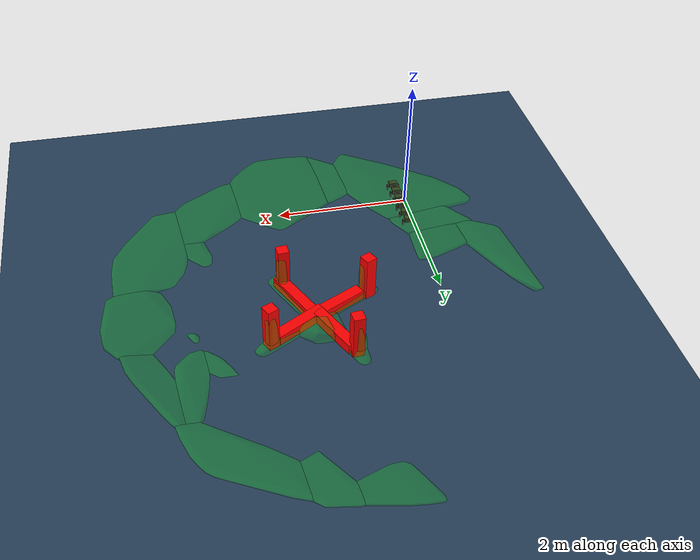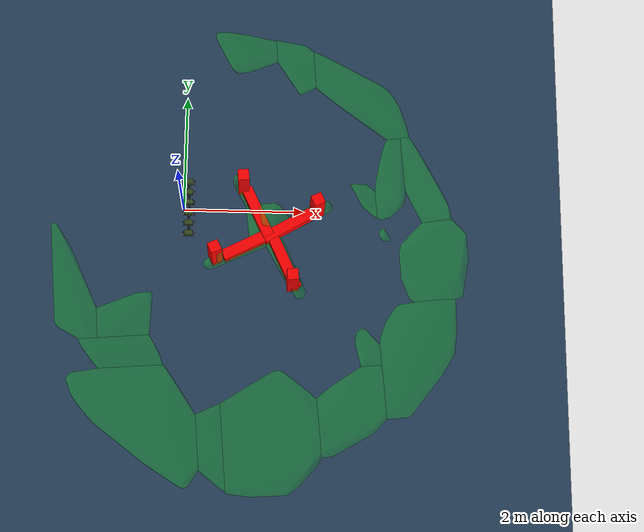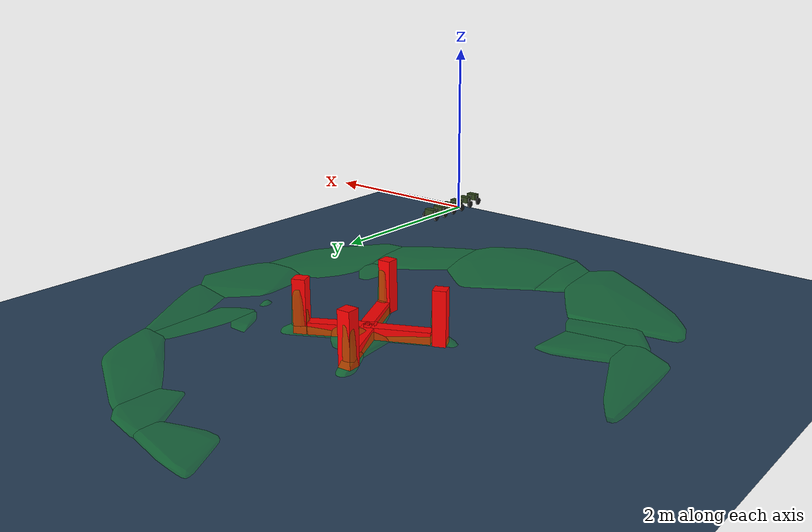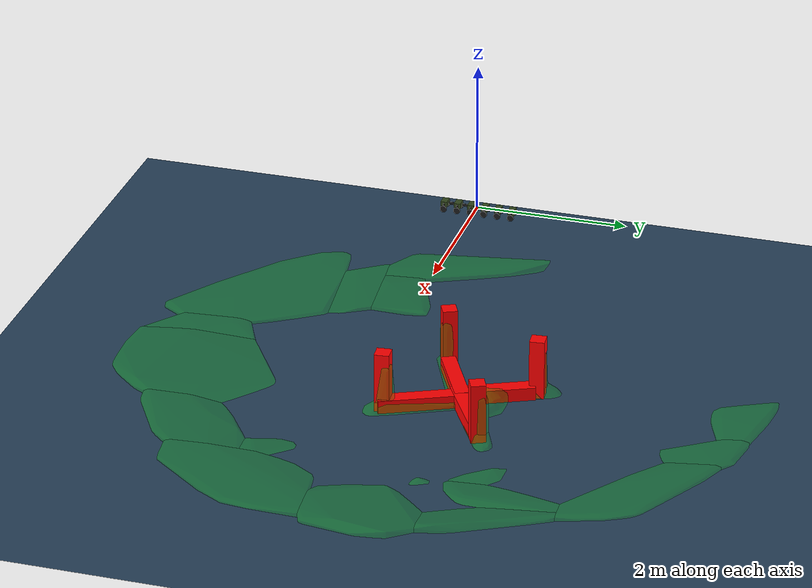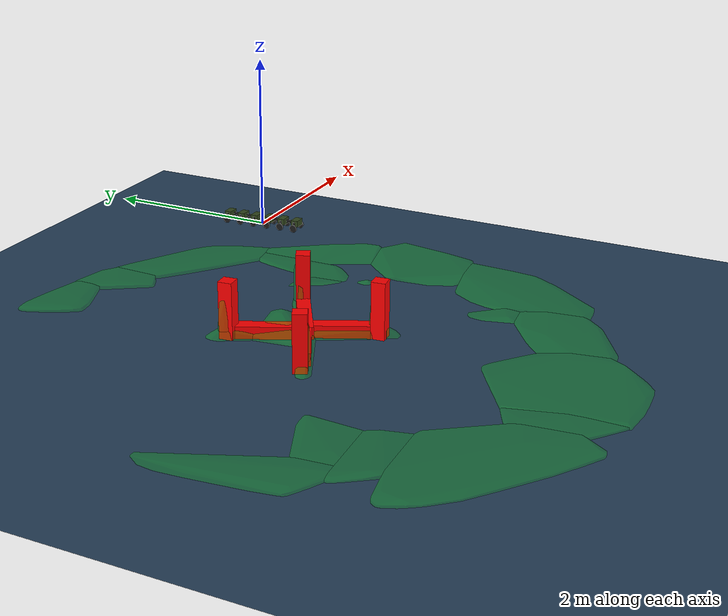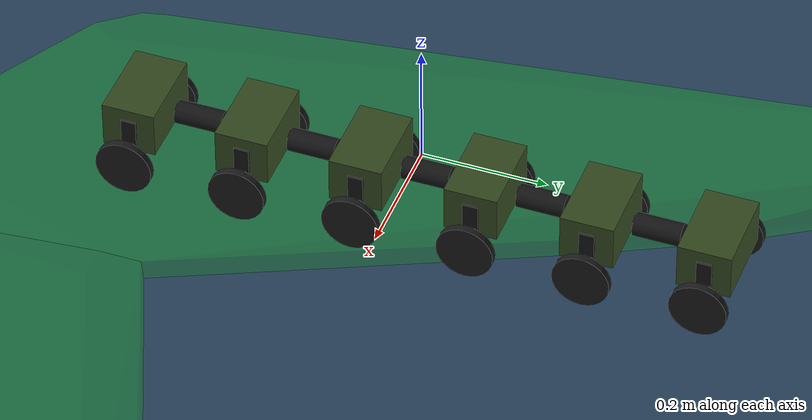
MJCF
<?xml version='1.0' encoding='UTF-8'?>
<mujoco model="o_leg_3sections">
  <option timestep="0.002" gravity="0 0 -9.81"/>
  <visual>
    <global offwidth="1920" offheight="1080"/>
  </visual>
  <asset>
    <texture name="grid" type="2d" builtin="checker" rgb1=".1 .2 .3" rgb2=".2 .3 .4" width="300" height="300"/>
    <material name="grid" texture="grid" texrepeat="30 30" reflectance="0"/>
    <material name="robot_green" rgba="0.1 0.35 0.1 1"/>
    <mesh name="garden_visual" file="garden_collision.stl" scale="2 2 2"/>
    <mesh name="garden_col_0" file="garden_collision_parts/garden_col_0.stl" scale="2 2 2"/>
    <mesh name="garden_col_1" file="garden_collision_parts/garden_col_1.stl" scale="2 2 2"/>
    <mesh name="garden_col_2" file="garden_collision_parts/garden_col_2.stl" scale="2 2 2"/>
    <mesh name="garden_col_3" file="garden_collision_parts/garden_col_3.stl" scale="2 2 2"/>
    <mesh name="garden_col_4" file="garden_collision_parts/garden_col_4.stl" scale="2 2 2"/>
    <mesh name="garden_col_5" file="garden_collision_parts/garden_col_5.stl" scale="2 2 2"/>
    <mesh name="garden_col_6" file="garden_collision_parts/garden_col_6.stl" scale="2 2 2"/>
    <mesh name="garden_col_7" file="garden_collision_parts/garden_col_7.stl" scale="2 2 2"/>
    <mesh name="garden_col_8" file="garden_collision_parts/garden_col_8.stl" scale="2 2 2"/>
    <mesh name="garden_col_9" file="garden_collision_parts/garden_col_9.stl" scale="2 2 2"/>
    <mesh name="garden_col_10" file="garden_collision_parts/garden_col_10.stl" scale="2 2 2"/>
    <mesh name="garden_col_11" file="garden_collision_parts/garden_col_11.stl" scale="2 2 2"/>
    <mesh name="garden_col_12" file="garden_collision_parts/garden_col_12.stl" scale="2 2 2"/>
    <mesh name="garden_col_13" file="garden_collision_parts/garden_col_13.stl" scale="2 2 2"/>
    <mesh name="garden_col_14" file="garden_collision_parts/garden_col_14.stl" scale="2 2 2"/>
    <mesh name="garden_col_15" file="garden_collision_parts/garden_col_15.stl" scale="2 2 2"/>
    <mesh name="garden_col_16" file="garden_collision_parts/garden_col_16.stl" scale="2 2 2"/>
    <mesh name="garden_col_17" file="garden_collision_parts/garden_col_17.stl" scale="2 2 2"/>
    <mesh name="garden_col_18" file="garden_collision_parts/garden_col_18.stl" scale="2 2 2"/>
    <mesh name="garden_col_19" file="garden_collision_parts/garden_col_19.stl" scale="2 2 2"/>
    <mesh name="garden_col_20" file="garden_collision_parts/garden_col_20.stl" scale="2 2 2"/>
    <mesh name="garden_col_21" file="garden_collision_parts/garden_col_21.stl" scale="2 2 2"/>
    <mesh name="garden_col_22" file="garden_collision_parts/garden_col_22.stl" scale="2 2 2"/>
    <mesh name="garden_col_23" file="garden_collision_parts/garden_col_23.stl" scale="2 2 2"/>
    <mesh name="garden_col_24" file="garden_collision_parts/garden_col_24.stl" scale="2 2 2"/>
    <mesh name="garden_col_25" file="garden_collision_parts/garden_col_25.stl" scale="2 2 2"/>
  </asset>
  <worldbody>
    <geom name="ground" type="plane" pos="0 0 -2.12" size="10 10 0.4" material="grid" friction="0.5 0 0"/>
    <light name="strong_light" pos="0 0 5" dir="0 0 -4" directional="true" diffuse="1 1 4" specular="0.3 0.3 0.6" active="true" castshadow="false" cutoff="100" exponent="10"/>
    <camera name="side_cam1" pos="4.787 -0.909 -1.537" xyaxes="-0.011 1.000 -0.000 -0.068 -0.001 0.998"/>
    <camera name="side_cam2" pos="0.783 -0.953 3.350" xyaxes="-0.008 1.000 0.000 -0.989 -0.008 0.148"/>

    <!-- ===== SECTION 3 (root) ===== -->
    <body name="body_middle6" pos="-0.00714 0.36184 0.008">
      <joint name="root_free" type="free"/>
      <geom size="0.0666575 0.041973 0.0374445" pos="0.074417 0.12845 0.025525" type="box" rgba="0.2 0.28 0.12 1"/>
      <inertial pos="0.074417 0.12845 0.025525" mass="0.08684000" diaginertia="0.00009158204 0.00016920278 0.00017961293"/>

      <body name="motor_L6" pos="0 0 0">
        <inertial pos="0.13525 0.12938 0.022634" mass="0.04388000" diaginertia="0.00000721932 0.00001081797 0.00001232792"/>
        <geom size="0.009 0.012 0.0215" pos="0.13525 0.12938 0.022634" type="box" rgba="0.08 0.08 0.08 1"/>
        <body name="o_leg_L6" pos="0 0 0">
          <joint name="knee_joint_L6" type="hinge" pos="-0.009764 0.1294 0.01076" axis="1 0 0" damping="0.5"/>
          <inertial pos="0.16407 0.12939 -0.027134" mass="0.10587964" diaginertia="0.00004860956 0.00005124607 0.00009533636"/>
          <geom name="o_leg_L6" size="0.045 0.006" pos="0.16407 0.12939 -0.027134" quat="0.707105 0 0.707108 0" type="cylinder" rgba="0.10 0.10 0.10 1"/>
        </body>
      </body>

      <body name="motor_R6" pos="0 0 0">
        <inertial pos="0.012712 0.12941 0.022604" mass="0.04388000" diaginertia="0.00000721932 0.00001081797 0.00001232792"/>
        <geom size="0.009 0.012 0.0215" pos="0.012712 0.12941 0.022604" type="box" rgba="0.08 0.08 0.08 1"/>
        <body name="o_leg_R6" pos="0 0 0">
          <joint name="knee_joint_R6" type="hinge" pos="-0.009764 0.1294 0.01076" axis="1 0 0" damping="0.5"/>
          <inertial pos="-0.016106 0.1294 -0.027164" mass="0.10587964" diaginertia="0.00004860956 0.00005124607 0.00009533636"/>
          <geom name="o_leg_R6" size="0.045 0.006" pos="-0.016106 0.1294 -0.027164" quat="0.707105 0 0.707108 0" type="cylinder" rgba="0.10 0.10 0.10 1"/>
        </body>
      </body>

      <body name="vertjoint6" pos="0 0 0">
        <joint name="vertjoint_hinge6" type="hinge" pos="0.094905 0.086975 0.02858" axis="1 0 0" range="-90 90" damping="0.5"/>
        <inertial pos="0.077976 0.038797 0.027871" mass="0.15853000" diaginertia="0.00004786090 0.00019459966 0.00019531491"/>
        <geom size="0.018 0.0375" pos="0.077976 0.038797 0.027871" quat="0.499998 -0.500002 0.5 0.5" type="cylinder" rgba="0.08 0.08 0.08 1"/>

        <body name="horzjoint6_body" pos="0 0 0">
          <joint name="horzjoint6" type="hinge" pos="0.07753 -0.009025 0.045952" axis="0 0 1" range="-90 90" damping="0.5"/>
          <inertial pos="0.07753 -0.009025 0.045952" mass="0.0004" diaginertia="0.000001 0.000001 0.000001"/>

          <!-- ===== SECTION 2 ===== -->
          <body name="body_middle5" pos="0.00357 -0.18092 0.003">
            <geom size="0.0666575 0.041973 0.0374445" pos="0.074417 0.12845 0.025525" type="box" rgba="0.2 0.28 0.12 1"/>
            <inertial pos="0.074417 0.12845 0.025525" mass="0.08684000" diaginertia="0.00009158204 0.00016920278 0.00017961293"/>

            <body name="motor_L5" pos="0 0 0">
              <inertial pos="0.13525 0.12938 0.022634" mass="0.04388000" diaginertia="0.00000721932 0.00001081797 0.00001232792"/>
              <geom size="0.009 0.012 0.0215" pos="0.13525 0.12938 0.022634" type="box" rgba="0.08 0.08 0.08 1"/>
              <body name="o_leg_L5" pos="0 0 0">
                <joint name="knee_joint_L5" type="hinge" pos="-0.009764 0.1294 0.01076" axis="1 0 0" damping="0.5"/>
                <inertial pos="0.16407 0.12939 -0.027134" mass="0.10587964" diaginertia="0.00004860956 0.00005124607 0.00009533636"/>
                <geom name="o_leg_L5" size="0.045 0.006" pos="0.16407 0.12939 -0.027134" quat="0.707105 0 0.707108 0" type="cylinder" rgba="0.10 0.10 0.10 1"/>
              </body>
            </body>

            <body name="motor_R5" pos="0 0 0">
              <inertial pos="0.012712 0.12941 0.022604" mass="0.04388000" diaginertia="0.00000721932 0.00001081797 0.00001232792"/>
              <geom size="0.009 0.012 0.0215" pos="0.012712 0.12941 0.022604" type="box" rgba="0.08 0.08 0.08 1"/>
              <body name="o_leg_R5" pos="0 0 0">
                <joint name="knee_joint_R5" type="hinge" pos="-0.009764 0.1294 0.01076" axis="1 0 0" damping="0.5"/>
                <inertial pos="-0.016106 0.1294 -0.027164" mass="0.10587964" diaginertia="0.00004860956 0.00005124607 0.00009533636"/>
                <geom name="o_leg_R5" size="0.045 0.006" pos="-0.016106 0.1294 -0.027164" quat="0.707105 0 0.707108 0" type="cylinder" rgba="0.10 0.10 0.10 1"/>
              </body>
            </body>

            <body name="vertjoint5" pos="0 0 0">
              <joint name="vertjoint_hinge5" type="hinge" pos="0.094905 0.086975 0.02858" axis="1 0 0" range="-90 90" damping="0.5"/>
              <inertial pos="0.077976 0.038797 0.027871" mass="0.15853000" diaginertia="0.00004786090 0.00019459966 0.00019531491"/>
              <geom size="0.018 0.0375" pos="0.077976 0.038797 0.027871" quat="0.499998 -0.500002 0.5 0.5" type="cylinder" rgba="0.08 0.08 0.08 1"/>

              <body name="horzjoint5_body" pos="0 0 0">
                <joint name="horzjoint5" type="hinge" pos="0.07753 -0.009025 0.045952" axis="0 0 1" range="-90 90" damping="0.5"/>
                <inertial pos="0.07753 -0.009025 0.045952" mass="0.0004" diaginertia="0.000001 0.000001 0.000001"/>

                <!-- ===== SECTION 1 ===== -->
                <body name="body_middle4" pos="0.00357 -0.18092 0.003">
                  <geom size="0.0666575 0.041973 0.0374445" pos="0.074417 0.12845 0.025525" type="box" rgba="0.2 0.28 0.12 1"/>
                  <inertial pos="0.074417 0.12845 0.025525" mass="0.08684000" diaginertia="0.00009158204 0.00016920278 0.00017961293"/>

                  <body name="motor_L4" pos="0 0 0">
                    <inertial pos="0.13525 0.12938 0.022634" mass="0.04388000" diaginertia="0.00000721932 0.00001081797 0.00001232792"/>
                    <geom size="0.009 0.012 0.0215" pos="0.13525 0.12938 0.022634" type="box" rgba="0.08 0.08 0.08 1"/>
                    <body name="o_leg_L4" pos="0 0 0">
                      <joint name="knee_joint_L4" type="hinge" pos="-0.009764 0.1294 0.01076" axis="1 0 0" damping="0.5"/>
                      <inertial pos="0.16407 0.12939 -0.027134" mass="0.10587964" diaginertia="0.00004860956 0.00005124607 0.00009533636"/>
                      <geom name="o_leg_L4" size="0.045 0.006" pos="0.16407 0.12939 -0.027134" quat="0.707105 0 0.707108 0" type="cylinder" rgba="0.10 0.10 0.10 1"/>
                    </body>
                  </body>

                  <body name="motor_R4" pos="0 0 0">
                    <inertial pos="0.012712 0.12941 0.022604" mass="0.04388000" diaginertia="0.00000721932 0.00001081797 0.00001232792"/>
                    <geom size="0.009 0.012 0.0215" pos="0.012712 0.12941 0.022604" type="box" rgba="0.08 0.08 0.08 1"/>
                    <body name="o_leg_R4" pos="0 0 0">
                      <joint name="knee_joint_R4" type="hinge" pos="-0.009764 0.1294 0.01076" axis="1 0 0" damping="0.5"/>
                      <inertial pos="-0.016106 0.1294 -0.027164" mass="0.10587964" diaginertia="0.00004860956 0.00005124607 0.00009533636"/>
                      <geom name="o_leg_R4" size="0.045 0.006" pos="-0.016106 0.1294 -0.027164" quat="0.707105 0 0.707108 0" type="cylinder" rgba="0.10 0.10 0.10 1"/>
                    </body>
                  </body>

                  <body name="vertjoint4" pos="0 0 0">
                    <joint name="vertjoint_hinge4" type="hinge" pos="0.094905 0.086975 0.02858" axis="1 0 0" range="-90 90" damping="0.5"/>
                    <inertial pos="0.077976 0.038797 0.027871" mass="0.15853000" diaginertia="0.00004786090 0.00019459966 0.00019531491"/>
                    <geom size="0.018 0.0375" pos="0.077976 0.038797 0.027871" quat="0.499998 -0.500002 0.5 0.5" type="cylinder" rgba="0.08 0.08 0.08 1"/>

                    <body name="horzjoint4_body" pos="0 0 0">
                      <joint name="horzjoint4" type="hinge" pos="0.07753 -0.009025 0.045952" axis="0 0 1" range="-90 90" damping="0.5"/>
                      <inertial pos="0.07753 -0.009025 0.045952" mass="0.0004" diaginertia="0.000001 0.000001 0.000001"/>

                      <!-- ===== SECTION 4 ===== -->
                      <body name="body_middle3" pos="0.00357 -0.18092 0.003">
                        <camera name="robot_center_scene_camera" pos="0.074 0.064 0.120" xyaxes="-1 0 0 0 0 1" fovy="90"/>
                        <geom size="0.0666575 0.041973 0.0374445" pos="0.074417 0.12845 0.025525" type="box" rgba="0.2 0.28 0.12 1"/>
                        <inertial pos="0.074417 0.12845 0.025525" mass="0.08684000" diaginertia="0.00009158204 0.00016920278 0.00017961293"/>

                        <body name="motor_L3" pos="0 0 0">
                          <inertial pos="0.13525 0.12938 0.022634" mass="0.04388000" diaginertia="0.00000721932 0.00001081797 0.00001232792"/>
                          <geom size="0.009 0.012 0.0215" pos="0.13525 0.12938 0.022634" type="box" rgba="0.08 0.08 0.08 1"/>
                          <body name="o_leg_L3" pos="0 0 0">
                            <joint name="knee_joint_L3" type="hinge" pos="-0.009764 0.1294 0.01076" axis="1 0 0" damping="0.5"/>
                            <inertial pos="0.16407 0.12939 -0.027134" mass="0.10587964" diaginertia="0.00004860956 0.00005124607 0.00009533636"/>
                            <geom name="o_leg_L3" size="0.045 0.006" pos="0.16407 0.12939 -0.027134" quat="0.707105 0 0.707108 0" type="cylinder" rgba="0.10 0.10 0.10 1"/>
                          </body>
                        </body>

                        <body name="motor_R3" pos="0 0 0">
                          <inertial pos="0.012712 0.12941 0.022604" mass="0.04388000" diaginertia="0.00000721932 0.00001081797 0.00001232792"/>
                          <geom size="0.009 0.012 0.0215" pos="0.012712 0.12941 0.022604" type="box" rgba="0.08 0.08 0.08 1"/>
                          <body name="o_leg_R3" pos="0 0 0">
                            <joint name="knee_joint_R3" type="hinge" pos="-0.009764 0.1294 0.01076" axis="1 0 0" damping="0.5"/>
                            <inertial pos="-0.016106 0.1294 -0.027164" mass="0.10587964" diaginertia="0.00004860956 0.00005124607 0.00009533636"/>
                            <geom name="o_leg_R3" size="0.045 0.006" pos="-0.016106 0.1294 -0.027164" quat="0.707105 0 0.707108 0" type="cylinder" rgba="0.10 0.10 0.10 1"/>
                          </body>
                        </body>

                        <body name="vertjoint3" pos="0 0 0">
                          <joint name="vertjoint_hinge3" type="hinge" pos="0.094905 0.086975 0.02858" axis="1 0 0" range="-90 90" damping="0.5"/>
                          <inertial pos="0.077976 0.038797 0.027871" mass="0.15853000" diaginertia="0.00004786090 0.00019459966 0.00019531491"/>
                          <geom size="0.018 0.0375" pos="0.077976 0.038797 0.027871" quat="0.499998 -0.500002 0.5 0.5" type="cylinder" rgba="0.08 0.08 0.08 1"/>

                          <body name="horzjoint3_body" pos="0 0 0">
                            <joint name="horzjoint3" type="hinge" pos="0.07753 -0.009025 0.045952" axis="0 0 1" range="-90 90" damping="0.5"/>
                            <inertial pos="0.07753 -0.009025 0.045952" mass="0.0004" diaginertia="0.000001 0.000001 0.000001"/>

                            <!-- ===== SECTION 5 ===== -->
                            <body name="body_middle2" pos="0.00357 -0.18092 0.003">
                              <geom size="0.0666575 0.041973 0.0374445" pos="0.074417 0.12845 0.025525" type="box" rgba="0.2 0.28 0.12 1"/>
                              <inertial pos="0.074417 0.12845 0.025525" mass="0.08684000" diaginertia="0.00009158204 0.00016920278 0.00017961293"/>

                              <body name="motor_L2" pos="0 0 0">
                                <inertial pos="0.13525 0.12938 0.022634" mass="0.04388000" diaginertia="0.00000721932 0.00001081797 0.00001232792"/>
                                <geom size="0.009 0.012 0.0215" pos="0.13525 0.12938 0.022634" type="box" rgba="0.08 0.08 0.08 1"/>
                                <body name="o_leg_L2" pos="0 0 0">
                                  <joint name="knee_joint_L2" type="hinge" pos="-0.009764 0.1294 0.01076" axis="1 0 0" damping="0.5"/>
                                  <inertial pos="0.16407 0.12939 -0.027134" mass="0.10587964" diaginertia="0.00004860956 0.00005124607 0.00009533636"/>
                                  <geom name="o_leg_L2" size="0.045 0.006" pos="0.16407 0.12939 -0.027134" quat="0.707105 0 0.707108 0" type="cylinder" rgba="0.10 0.10 0.10 1"/>
                                </body>
                              </body>

                              <body name="motor_R2" pos="0 0 0">
                                <inertial pos="0.012712 0.12941 0.022604" mass="0.04388000" diaginertia="0.00000721932 0.00001081797 0.00001232792"/>
                                <geom size="0.009 0.012 0.0215" pos="0.012712 0.12941 0.022604" type="box" rgba="0.08 0.08 0.08 1"/>
                                <body name="o_leg_R2" pos="0 0 0">
                                  <joint name="knee_joint_R2" type="hinge" pos="-0.009764 0.1294 0.01076" axis="1 0 0" damping="0.5"/>
                                  <inertial pos="-0.016106 0.1294 -0.027164" mass="0.10587964" diaginertia="0.00004860956 0.00005124607 0.00009533636"/>
                                  <geom name="o_leg_R2" size="0.045 0.006" pos="-0.016106 0.1294 -0.027164" quat="0.707105 0 0.707108 0" type="cylinder" rgba="0.10 0.10 0.10 1"/>
                                </body>
                              </body>

                              <body name="vertjoint2" pos="0 0 0">
                                <joint name="vertjoint_hinge2" type="hinge" pos="0.094905 0.086975 0.02858" axis="1 0 0" range="-90 90" damping="0.5"/>
                                <inertial pos="0.077976 0.038797 0.027871" mass="0.15853000" diaginertia="0.00004786090 0.00019459966 0.00019531491"/>
                                <geom size="0.018 0.0375" pos="0.077976 0.038797 0.027871" quat="0.499998 -0.500002 0.5 0.5" type="cylinder" rgba="0.08 0.08 0.08 1"/>

                                <body name="horzjoint2_body" pos="0 0 0">
                                  <joint name="horzjoint2" type="hinge" pos="0.07753 -0.009025 0.045952" axis="0 0 1" range="-90 90" damping="0.5"/>
                                  <inertial pos="0.07753 -0.009025 0.045952" mass="0.0004" diaginertia="0.000001 0.000001 0.000001"/>

                                  <!-- ===== SECTION 6 (tail) ===== -->
                                  <body name="body_middle1" pos="0.00357 -0.18092 0.003">
                                    <geom size="0.0666575 0.041973 0.0374445" pos="0.074417 0.12845 0.025525" type="box" rgba="0.2 0.28 0.12 1"/>
                                    <inertial pos="0.074417 0.12845 0.025525" mass="0.08684000" diaginertia="0.00009158204 0.00016920278 0.00017961293"/>

                                    <body name="motor_L1" pos="0 0 0">
                                      <inertial pos="0.13525 0.12938 0.022634" mass="0.04388000" diaginertia="0.00000721932 0.00001081797 0.00001232792"/>
                                      <geom size="0.009 0.012 0.0215" pos="0.13525 0.12938 0.022634" type="box" rgba="0.08 0.08 0.08 1"/>
                                      <body name="o_leg_L1" pos="0 0 0">
                                        <joint name="knee_joint_L1" type="hinge" pos="-0.009764 0.1294 0.01076" axis="1 0 0" damping="0.5"/>
                                        <inertial pos="0.16407 0.12939 -0.027134" mass="0.10587964" diaginertia="0.00004860956 0.00005124607 0.00009533636"/>
                                        <geom name="o_leg_L1" size="0.045 0.006" pos="0.16407 0.12939 -0.027134" quat="0.707105 0 0.707108 0" type="cylinder" rgba="0.10 0.10 0.10 1"/>
                                      </body>
                                    </body>

                                    <body name="motor_R1" pos="0 0 0">
                                      <inertial pos="0.012712 0.12941 0.022604" mass="0.04388000" diaginertia="0.00000721932 0.00001081797 0.00001232792"/>
                                      <geom size="0.009 0.012 0.0215" pos="0.012712 0.12941 0.022604" type="box" rgba="0.08 0.08 0.08 1"/>
                                      <body name="o_leg_R1" pos="0 0 0">
                                        <joint name="knee_joint_R1" type="hinge" pos="-0.009764 0.1294 0.01076" axis="1 0 0" damping="0.5"/>
                                        <inertial pos="-0.016106 0.1294 -0.027164" mass="0.10587964" diaginertia="0.00004860956 0.00005124607 0.00009533636"/>
                                        <geom name="o_leg_R1" size="0.045 0.006" pos="-0.016106 0.1294 -0.027164" quat="0.707105 0 0.707108 0" type="cylinder" rgba="0.10 0.10 0.10 1"/>
                                      </body>
                                    </body>

                                  </body>
                                </body>
                              </body>
                            </body>
                          </body>
                        </body>
                      </body>
                    </body>
                  </body>
                </body>
              </body>
            </body>
          </body>
        </body>
      </body>
    </body>
    <body name="garden_collision_body" pos="1.1 -3.4 -2.8" euler="0 0 5">
      <geom
    name="test_cube"
    type="box"
    pos="0.25 3.4 0.5"
    size="0.1 0.5 0.35"
    rgba="1 0 0 1"
    euler=" 0 0 112"/>
      <geom
    name="test_cube1"
    type="box"
    pos="1 3.7 0.5"
    size="0.1 0.5 0.35"
    rgba="1 0 0 1"
    euler=" 0 0 115"/>
      <geom
    name="test_cube2"
    type="box"
    pos="0.47 4 0.5"
    size="0.1 0.5 0.35"
    rgba="1 0 0 1"
    euler=" 0 0 20"/>
      <geom
    name="test_cube3"
    type="box"
    pos="0.9 3 0.5"
    size="0.1 0.5 0.35"
    rgba="1 0 0 1"
    euler=" 0 0 20"/>

      <geom
    name="test_cube11"
    type="box"
    pos="0.25 4.5 1"
    size="0.1 0.5 0.1"
    rgba="1 0 0 1"
    euler=" 90 0 0"/>
      <geom
    name="test_cube21"
    type="box"
    pos="-0.35 3.2 1"
    size="0.1 0.5 0.1"
    rgba="1 0 0 1"
    euler=" 90 20 0"/>
      <geom
    name="test_cube31"
    type="box"
    pos="1 2.6 1"
    size="0.1 0.5 0.1"
    rgba="1 0 0 1"
    euler=" 90 0 0"/>
      <geom
    name="test_cube41"
    type="box"
    pos="1.55 3.95 1"
    size="0.1 0.5 0.1"
    rgba="1 0 0 1"
    euler=" 90 20 0"/>

      <geom name="garden_visual_geom" type="mesh" mesh="garden_visual" contype="0" conaffinity="0" rgba="1 0 0 0.0"/>
      <geom name="garden_col_geom_0" type="mesh" mesh="garden_col_0" contype="1" conaffinity="1" rgba="0 1 0 0.25"/>
      <geom name="garden_col_geom_1" type="mesh" mesh="garden_col_1" contype="1" conaffinity="1" rgba="0 1 0 0.25"/>
      <geom name="garden_col_geom_2" type="mesh" mesh="garden_col_2" contype="1" conaffinity="1" rgba="0 1 0 0.25"/>
      <geom name="garden_col_geom_3" type="mesh" mesh="garden_col_3" contype="1" conaffinity="1" rgba="0 1 0 0.25"/>
      <geom name="garden_col_geom_4" type="mesh" mesh="garden_col_4" contype="1" conaffinity="1" rgba="0 1 0 0.25"/>
      <geom name="garden_col_geom_5" type="mesh" mesh="garden_col_5" contype="1" conaffinity="1" rgba="0 1 0 0.25"/>
      <geom name="garden_col_geom_6" type="mesh" mesh="garden_col_6" contype="1" conaffinity="1" rgba="0 1 0 0.25"/>
      <geom name="garden_col_geom_7" type="mesh" mesh="garden_col_7" contype="1" conaffinity="1" rgba="0 1 0 0.25"/>
      <geom name="garden_col_geom_8" type="mesh" mesh="garden_col_8" contype="1" conaffinity="1" rgba="0 1 0 0.25"/>
      <geom name="garden_col_geom_9" type="mesh" mesh="garden_col_9" contype="1" conaffinity="1" rgba="0 1 0 0.25"/>
      <geom name="garden_col_geom_10" type="mesh" mesh="garden_col_10" contype="1" conaffinity="1" rgba="0 1 0 0.25"/>
      <geom name="garden_col_geom_11" type="mesh" mesh="garden_col_11" contype="1" conaffinity="1" rgba="0 1 0 0.25"/>
      <geom name="garden_col_geom_12" type="mesh" mesh="garden_col_12" contype="1" conaffinity="1" rgba="0 1 0 0.25"/>
      <geom name="garden_col_geom_13" type="mesh" mesh="garden_col_13" contype="1" conaffinity="1" rgba="0 1 0 0.25"/>
      <geom name="garden_col_geom_14" type="mesh" mesh="garden_col_14" contype="1" conaffinity="1" rgba="0 1 0 0.25"/>
      <geom name="garden_col_geom_15" type="mesh" mesh="garden_col_15" contype="1" conaffinity="1" rgba="0 1 0 0.25"/>
      <geom name="garden_col_geom_16" type="mesh" mesh="garden_col_16" contype="1" conaffinity="1" rgba="0 1 0 0.25"/>
      <geom name="garden_col_geom_17" type="mesh" mesh="garden_col_17" contype="1" conaffinity="1" rgba="0 1 0 0.25"/>
      <geom name="garden_col_geom_18" type="mesh" mesh="garden_col_18" contype="1" conaffinity="1" rgba="0 1 0 0.25"/>
      <geom name="garden_col_geom_19" type="mesh" mesh="garden_col_19" contype="1" conaffinity="1" rgba="0 1 0 0.25"/>
      <geom name="garden_col_geom_20" type="mesh" mesh="garden_col_20" contype="1" conaffinity="1" rgba="0 1 0 0.25"/>
      <geom name="garden_col_geom_21" type="mesh" mesh="garden_col_21" contype="1" conaffinity="1" rgba="0 1 0 0.25"/>
      <geom name="garden_col_geom_22" type="mesh" mesh="garden_col_22" contype="1" conaffinity="1" rgba="0 1 0 0.25"/>
      <geom name="garden_col_geom_23" type="mesh" mesh="garden_col_23" contype="1" conaffinity="1" rgba="0 1 0 0.25"/>
      <geom name="garden_col_geom_24" type="mesh" mesh="garden_col_24" contype="1" conaffinity="1" rgba="0 1 0 0.25"/>
      <geom name="garden_col_geom_25" type="mesh" mesh="garden_col_25" contype="1" conaffinity="1" rgba="0 1 0 0.25"/>
    </body>
  </worldbody>

  <actuator>
    <position name="knee_L6" joint="knee_joint_L6" kp="10" forcerange="-4 4"/>
    <position name="knee_R6" joint="knee_joint_R6" kp="10" forcerange="-4 4"/>
    <position name="vertjoint6" joint="vertjoint_hinge6" ctrlrange="-100 100" kp="10" forcerange="-5 5"/>
    <position name="horzjoint6" joint="horzjoint6" ctrlrange="-100 100" kp="10"/>

    <position name="knee_L5" joint="knee_joint_L5" kp="10" forcerange="-4 4"/>
    <position name="knee_R5" joint="knee_joint_R5" kp="10" forcerange="-4 4"/>
    <position name="vertjoint5" joint="vertjoint_hinge5" ctrlrange="-100 100" kp="10" forcerange="-5 5"/>
    <position name="horzjoint5" joint="horzjoint5" ctrlrange="-100 100" kp="10"/>

    <position name="knee_L4" joint="knee_joint_L4" kp="10" forcerange="-4 4"/>
    <position name="knee_R4" joint="knee_joint_R4" kp="10" forcerange="-4 4"/>
    <position name="vertjoint4" joint="vertjoint_hinge4" ctrlrange="-100 100" kp="10" forcerange="-5 5"/>
    <position name="horzjoint4" joint="horzjoint4" ctrlrange="-100 100" kp="10"/>

    <position name="knee_L3" joint="knee_joint_L3" kp="10" forcerange="-4 4"/>
    <position name="knee_R3" joint="knee_joint_R3" kp="10" forcerange="-4 4"/>
    <position name="vertjoint3" joint="vertjoint_hinge3" ctrlrange="-100 100" kp="10" forcerange="-5 5"/>
    <position name="horzjoint3" joint="horzjoint3" ctrlrange="-100 100" kp="10"/>

    <position name="knee_L2" joint="knee_joint_L2" kp="10" forcerange="-4 4"/>
    <position name="knee_R2" joint="knee_joint_R2" kp="10" forcerange="-4 4"/>
    <position name="vertjoint2" joint="vertjoint_hinge2" ctrlrange="-100 100" kp="10" forcerange="-5 5"/>
    <position name="horzjoint2" joint="horzjoint2" ctrlrange="-100 100" kp="10"/>

    <position name="knee_L1" joint="knee_joint_L1" kp="10" forcerange="-4 4"/>
    <position name="knee_R1" joint="knee_joint_R1" kp="10" forcerange="-4 4"/>
  </actuator>
</mujoco>
